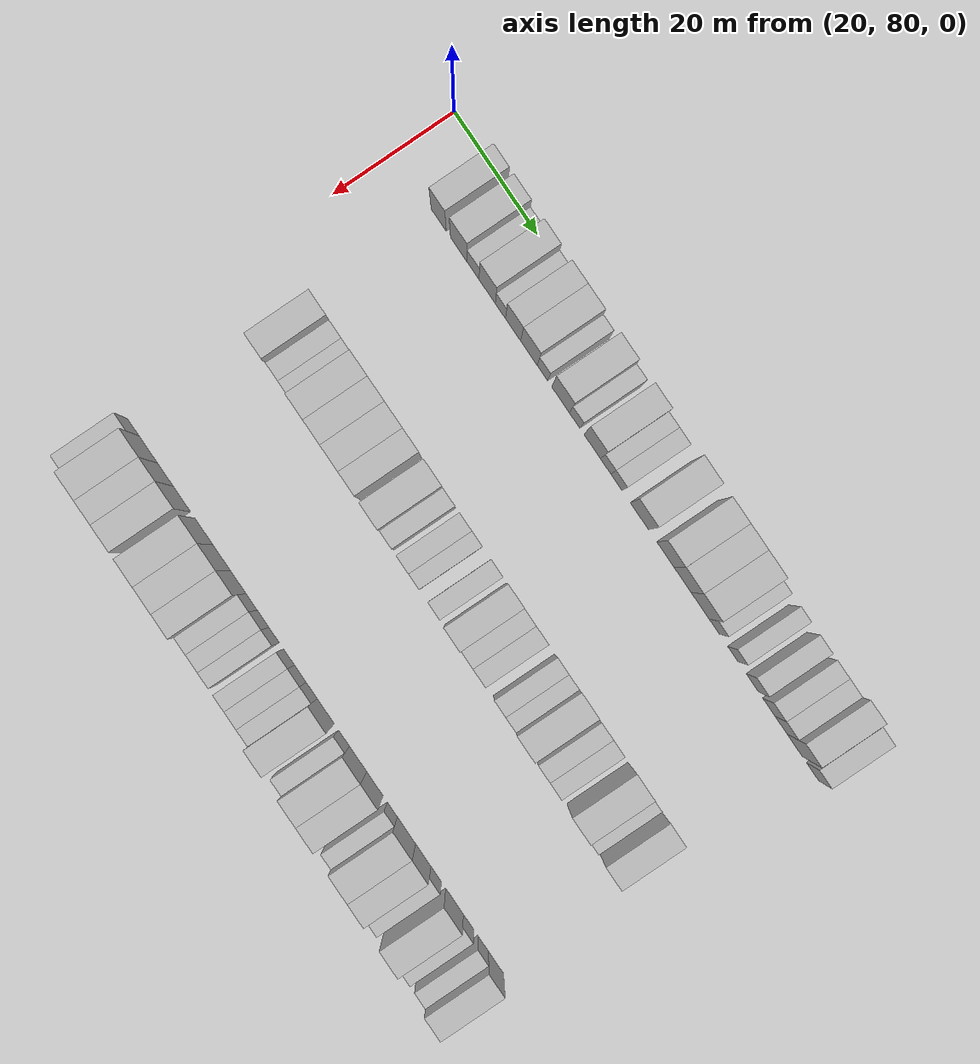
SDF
<sdf version="1.6">
 <world name="default">
  <model name="building_99">
   <static>1</static>
   <pose>25.0000 90.9124 0 0.000000 0.000000 0.000000</pose>
   <link name="link">
    <pose>0 0 4.50 0 0 0</pose>
    <collision name="collision"><geometry><box><size>10.0000 3.6326 9.0000</size></box></geometry></collision>
    <visual name="visual">
     <cast_shadows>0</cast_shadows>
     <geometry><box><size>10.0000 3.6326 9.0000</size></box></geometry>
     <material>
      <script>
       <uri>model://HANNAS_wall/materials/scripts</uri>
       <uri>model://HANNAS_wall/materials/textures</uri>
       <name>vrc/HANNAS_wall</name>
      </script>
     </material>
    </visual>
   </link>
  </model>
  <model name="building_100">
   <static>1</static>
   <pose>25.0000 95.7496 0 0.000000 0.000000 0.000000</pose>
   <link name="link">
    <pose>0 0 4.50 0 0 0</pose>
    <collision name="collision"><geometry><box><size>10.0000 4.0418 9.0000</size></box></geometry></collision>
    <visual name="visual">
     <cast_shadows>0</cast_shadows>
     <geometry><box><size>10.0000 4.0418 9.0000</size></box></geometry>
     <material>
      <script>
       <uri>model://HANNAS_wall/materials/scripts</uri>
       <uri>model://HANNAS_wall/materials/textures</uri>
       <name>vrc/HANNAS_wall</name>
      </script>
     </material>
    </visual>
   </link>
  </model>
  <model name="building_101">
   <static>1</static>
   <pose>25.0000 99.2112 0 0.000000 0.000000 0.000000</pose>
   <link name="link">
    <pose>0 0 3.00 0 0 0</pose>
    <collision name="collision"><geometry><box><size>10.0000 2.8814 6.0000</size></box></geometry></collision>
    <visual name="visual">
     <cast_shadows>0</cast_shadows>
     <geometry><box><size>10.0000 2.8814 6.0000</size></box></geometry>
     <material>
      <script>
       <uri>model://HANNAS_wall/materials/scripts</uri>
       <uri>model://HANNAS_wall/materials/textures</uri>
       <name>vrc/HANNAS_wall</name>
      </script>
     </material>
    </visual>
   </link>
  </model>
  <model name="building_102">
   <static>1</static>
   <pose>25.0000 102.6110 0 0.000000 0.000000 0.000000</pose>
   <link name="link">
    <pose>0 0 4.50 0 0 0</pose>
    <collision name="collision"><geometry><box><size>10.0000 3.9183 9.0000</size></box></geometry></collision>
    <visual name="visual">
     <cast_shadows>0</cast_shadows>
     <geometry><box><size>10.0000 3.9183 9.0000</size></box></geometry>
     <material>
      <script>
       <uri>model://HANNAS_wall/materials/scripts</uri>
       <uri>model://HANNAS_wall/materials/textures</uri>
       <name>vrc/HANNAS_wall</name>
      </script>
     </material>
    </visual>
   </link>
  </model>
  <model name="building_103">
   <static>1</static>
   <pose>25.0000 105.7883 0 0.000000 0.000000 0.000000</pose>
   <link name="link">
    <pose>0 0 3.00 0 0 0</pose>
    <collision name="collision"><geometry><box><size>10.0000 2.4362 6.0000</size></box></geometry></collision>
    <visual name="visual">
     <cast_shadows>0</cast_shadows>
     <geometry><box><size>10.0000 2.4362 6.0000</size></box></geometry>
     <material>
      <script>
       <uri>model://HANNAS_wall/materials/scripts</uri>
       <uri>model://HANNAS_wall/materials/textures</uri>
       <name>vrc/HANNAS_wall</name>
      </script>
     </material>
    </visual>
   </link>
  </model>
  <model name="building_104">
   <static>1</static>
   <pose>25.0000 108.8414 0 0.000000 0.000000 0.000000</pose>
   <link name="link">
    <pose>0 0 4.50 0 0 0</pose>
    <collision name="collision"><geometry><box><size>10.0000 3.6701 9.0000</size></box></geometry></collision>
    <visual name="visual">
     <cast_shadows>0</cast_shadows>
     <geometry><box><size>10.0000 3.6701 9.0000</size></box></geometry>
     <material>
      <script>
       <uri>model://HANNAS_wall/materials/scripts</uri>
       <uri>model://HANNAS_wall/materials/textures</uri>
       <name>vrc/HANNAS_wall</name>
      </script>
     </material>
    </visual>
   </link>
  </model>
  <model name="building_105">
   <static>1</static>
   <pose>25.0000 112.6756 0 0.000000 0.000000 0.000000</pose>
   <link name="link">
    <pose>0 0 4.50 0 0 0</pose>
    <collision name="collision"><geometry><box><size>10.0000 3.9984 9.0000</size></box></geometry></collision>
    <visual name="visual">
     <cast_shadows>0</cast_shadows>
     <geometry><box><size>10.0000 3.9984 9.0000</size></box></geometry>
     <material>
      <script>
       <uri>model://HANNAS_wall/materials/scripts</uri>
       <uri>model://HANNAS_wall/materials/textures</uri>
       <name>vrc/HANNAS_wall</name>
      </script>
     </material>
    </visual>
   </link>
  </model>
  <model name="building_106">
   <static>1</static>
   <pose>25.0000 115.9358 0 0.000000 0.000000 0.000000</pose>
   <link name="link">
    <pose>0 0 3.00 0 0 0</pose>
    <collision name="collision"><geometry><box><size>10.0000 2.5219 6.0000</size></box></geometry></collision>
    <visual name="visual">
     <cast_shadows>0</cast_shadows>
     <geometry><box><size>10.0000 2.5219 6.0000</size></box></geometry>
     <material>
      <script>
       <uri>model://HANNAS_wall/materials/scripts</uri>
       <uri>model://HANNAS_wall/materials/textures</uri>
       <name>vrc/HANNAS_wall</name>
      </script>
     </material>
    </visual>
   </link>
  </model>
  <model name="building_107">
   <static>1</static>
   <pose>25.0000 120.3085 0 0.000000 0.000000 0.000000</pose>
   <link name="link">
    <pose>0 0 4.50 0 0 0</pose>
    <collision name="collision"><geometry><box><size>10.0000 4.2235 9.0000</size></box></geometry></collision>
    <visual name="visual">
     <cast_shadows>0</cast_shadows>
     <geometry><box><size>10.0000 4.2235 9.0000</size></box></geometry>
     <material>
      <script>
       <uri>model://HANNAS_wall/materials/scripts</uri>
       <uri>model://HANNAS_wall/materials/textures</uri>
       <name>vrc/HANNAS_wall</name>
      </script>
     </material>
    </visual>
   </link>
  </model>
  <model name="building_108">
   <static>1</static>
   <pose>25.0000 123.6964 0 0.000000 0.000000 0.000000</pose>
   <link name="link">
    <pose>0 0 3.00 0 0 0</pose>
    <collision name="collision"><geometry><box><size>10.0000 2.5523 6.0000</size></box></geometry></collision>
    <visual name="visual">
     <cast_shadows>0</cast_shadows>
     <geometry><box><size>10.0000 2.5523 6.0000</size></box></geometry>
     <material>
      <script>
       <uri>model://HANNAS_wall/materials/scripts</uri>
       <uri>model://HANNAS_wall/materials/textures</uri>
       <name>vrc/HANNAS_wall</name>
      </script>
     </material>
    </visual>
   </link>
  </model>
  <model name="building_109">
   <static>1</static>
   <pose>25.0000 127.9633 0 0.000000 0.000000 0.000000</pose>
   <link name="link">
    <pose>0 0 4.50 0 0 0</pose>
    <collision name="collision"><geometry><box><size>10.0000 3.9815 9.0000</size></box></geometry></collision>
    <visual name="visual">
     <cast_shadows>0</cast_shadows>
     <geometry><box><size>10.0000 3.9815 9.0000</size></box></geometry>
     <material>
      <script>
       <uri>model://HANNAS_wall/materials/scripts</uri>
       <uri>model://HANNAS_wall/materials/textures</uri>
       <name>vrc/HANNAS_wall</name>
      </script>
     </material>
    </visual>
   </link>
  </model>
  <model name="building_110">
   <static>1</static>
   <pose>25.0000 131.2014 0 0.000000 0.000000 0.000000</pose>
   <link name="link">
    <pose>0 0 3.00 0 0 0</pose>
    <collision name="collision"><geometry><box><size>10.0000 2.4946 6.0000</size></box></geometry></collision>
    <visual name="visual">
     <cast_shadows>0</cast_shadows>
     <geometry><box><size>10.0000 2.4946 6.0000</size></box></geometry>
     <material>
      <script>
       <uri>model://HANNAS_wall/materials/scripts</uri>
       <uri>model://HANNAS_wall/materials/textures</uri>
       <name>vrc/HANNAS_wall</name>
      </script>
     </material>
    </visual>
   </link>
  </model>
  <model name="building_111">
   <static>1</static>
   <pose>25.0000 133.7897 0 0.000000 0.000000 0.000000</pose>
   <link name="link">
    <pose>0 0 3.00 0 0 0</pose>
    <collision name="collision"><geometry><box><size>10.0000 2.6820 6.0000</size></box></geometry></collision>
    <visual name="visual">
     <cast_shadows>0</cast_shadows>
     <geometry><box><size>10.0000 2.6820 6.0000</size></box></geometry>
     <material>
      <script>
       <uri>model://HANNAS_wall/materials/scripts</uri>
       <uri>model://HANNAS_wall/materials/textures</uri>
       <name>vrc/HANNAS_wall</name>
      </script>
     </material>
    </visual>
   </link>
  </model>
  <model name="building_112">
   <static>1</static>
   <pose>25.0000 139.3381 0 0.000000 0.000000 0.000000</pose>
   <link name="link">
    <pose>0 0 4.50 0 0 0</pose>
    <collision name="collision"><geometry><box><size>10.0000 4.4149 9.0000</size></box></geometry></collision>
    <visual name="visual">
     <cast_shadows>0</cast_shadows>
     <geometry><box><size>10.0000 4.4149 9.0000</size></box></geometry>
     <material>
      <script>
       <uri>model://HANNAS_wall/materials/scripts</uri>
       <uri>model://HANNAS_wall/materials/textures</uri>
       <name>vrc/HANNAS_wall</name>
      </script>
     </material>
    </visual>
   </link>
  </model>
  <model name="building_113">
   <static>1</static>
   <pose>25.0000 145.6314 0 0.000000 0.000000 0.000000</pose>
   <link name="link">
    <pose>0 0 4.50 0 0 0</pose>
    <collision name="collision"><geometry><box><size>10.0000 4.1716 9.0000</size></box></geometry></collision>
    <visual name="visual">
     <cast_shadows>0</cast_shadows>
     <geometry><box><size>10.0000 4.1716 9.0000</size></box></geometry>
     <material>
      <script>
       <uri>model://HANNAS_wall/materials/scripts</uri>
       <uri>model://HANNAS_wall/materials/textures</uri>
       <name>vrc/HANNAS_wall</name>
      </script>
     </material>
    </visual>
   </link>
  </model>
  <model name="building_114">
   <static>1</static>
   <pose>25.0000 149.7600 0 0.000000 0.000000 0.000000</pose>
   <link name="link">
    <pose>0 0 4.50 0 0 0</pose>
    <collision name="collision"><geometry><box><size>10.0000 4.0855 9.0000</size></box></geometry></collision>
    <visual name="visual">
     <cast_shadows>0</cast_shadows>
     <geometry><box><size>10.0000 4.0855 9.0000</size></box></geometry>
     <material>
      <script>
       <uri>model://HANNAS_wall/materials/scripts</uri>
       <uri>model://HANNAS_wall/materials/textures</uri>
       <name>vrc/HANNAS_wall</name>
      </script>
     </material>
    </visual>
   </link>
  </model>
  <model name="building_115">
   <static>1</static>
   <pose>25.0000 153.9776 0 0.000000 0.000000 0.000000</pose>
   <link name="link">
    <pose>0 0 4.50 0 0 0</pose>
    <collision name="collision"><geometry><box><size>10.0000 4.3497 9.0000</size></box></geometry></collision>
    <visual name="visual">
     <cast_shadows>0</cast_shadows>
     <geometry><box><size>10.0000 4.3497 9.0000</size></box></geometry>
     <material>
      <script>
       <uri>model://HANNAS_wall/materials/scripts</uri>
       <uri>model://HANNAS_wall/materials/textures</uri>
       <name>vrc/HANNAS_wall</name>
      </script>
     </material>
    </visual>
   </link>
  </model>
  <model name="building_116">
   <static>1</static>
   <pose>25.0000 157.3982 0 0.000000 0.000000 0.000000</pose>
   <link name="link">
    <pose>0 0 3.00 0 0 0</pose>
    <collision name="collision"><geometry><box><size>10.0000 2.4916 6.0000</size></box></geometry></collision>
    <visual name="visual">
     <cast_shadows>0</cast_shadows>
     <geometry><box><size>10.0000 2.4916 6.0000</size></box></geometry>
     <material>
      <script>
       <uri>model://HANNAS_wall/materials/scripts</uri>
       <uri>model://HANNAS_wall/materials/textures</uri>
       <name>vrc/HANNAS_wall</name>
      </script>
     </material>
    </visual>
   </link>
  </model>
  <model name="building_117">
   <static>1</static>
   <pose>25.0000 161.8828 0 0.000000 0.000000 0.000000</pose>
   <link name="link">
    <pose>0 0 3.00 0 0 0</pose>
    <collision name="collision"><geometry><box><size>10.0000 2.4776 6.0000</size></box></geometry></collision>
    <visual name="visual">
     <cast_shadows>0</cast_shadows>
     <geometry><box><size>10.0000 2.4776 6.0000</size></box></geometry>
     <material>
      <script>
       <uri>model://HANNAS_wall/materials/scripts</uri>
       <uri>model://HANNAS_wall/materials/textures</uri>
       <name>vrc/HANNAS_wall</name>
      </script>
     </material>
    </visual>
   </link>
  </model>
  <model name="building_118">
   <static>1</static>
   <pose>25.0000 166.6132 0 0.000000 0.000000 0.000000</pose>
   <link name="link">
    <pose>0 0 3.00 0 0 0</pose>
    <collision name="collision"><geometry><box><size>10.0000 2.9832 6.0000</size></box></geometry></collision>
    <visual name="visual">
     <cast_shadows>0</cast_shadows>
     <geometry><box><size>10.0000 2.9832 6.0000</size></box></geometry>
     <material>
      <script>
       <uri>model://HANNAS_wall/materials/scripts</uri>
       <uri>model://HANNAS_wall/materials/textures</uri>
       <name>vrc/HANNAS_wall</name>
      </script>
     </material>
    </visual>
   </link>
  </model>
  <model name="building_119">
   <static>1</static>
   <pose>25.0000 170.5753 0 0.000000 0.000000 0.000000</pose>
   <link name="link">
    <pose>0 0 3.00 0 0 0</pose>
    <collision name="collision"><geometry><box><size>10.0000 2.9409 6.0000</size></box></geometry></collision>
    <visual name="visual">
     <cast_shadows>0</cast_shadows>
     <geometry><box><size>10.0000 2.9409 6.0000</size></box></geometry>
     <material>
      <script>
       <uri>model://HANNAS_wall/materials/scripts</uri>
       <uri>model://HANNAS_wall/materials/textures</uri>
       <name>vrc/HANNAS_wall</name>
      </script>
     </material>
    </visual>
   </link>
  </model>
  <model name="building_120">
   <static>1</static>
   <pose>25.0000 173.5077 0 0.000000 0.000000 0.000000</pose>
   <link name="link">
    <pose>0 0 3.00 0 0 0</pose>
    <collision name="collision"><geometry><box><size>10.0000 2.9238 6.0000</size></box></geometry></collision>
    <visual name="visual">
     <cast_shadows>0</cast_shadows>
     <geometry><box><size>10.0000 2.9238 6.0000</size></box></geometry>
     <material>
      <script>
       <uri>model://HANNAS_wall/materials/scripts</uri>
       <uri>model://HANNAS_wall/materials/textures</uri>
       <name>vrc/HANNAS_wall</name>
      </script>
     </material>
    </visual>
   </link>
  </model>
  <model name="building_121">
   <static>1</static>
   <pose>25.0000 176.8179 0 0.000000 0.000000 0.000000</pose>
   <link name="link">
    <pose>0 0 4.50 0 0 0</pose>
    <collision name="collision"><geometry><box><size>10.0000 3.6967 9.0000</size></box></geometry></collision>
    <visual name="visual">
     <cast_shadows>0</cast_shadows>
     <geometry><box><size>10.0000 3.6967 9.0000</size></box></geometry>
     <material>
      <script>
       <uri>model://HANNAS_wall/materials/scripts</uri>
       <uri>model://HANNAS_wall/materials/textures</uri>
       <name>vrc/HANNAS_wall</name>
      </script>
     </material>
    </visual>
   </link>
  </model>
  <model name="building_122">
   <static>1</static>
   <pose>25.0000 181.1464 0 0.000000 0.000000 0.000000</pose>
   <link name="link">
    <pose>0 0 3.00 0 0 0</pose>
    <collision name="collision"><geometry><box><size>10.0000 2.9602 6.0000</size></box></geometry></collision>
    <visual name="visual">
     <cast_shadows>0</cast_shadows>
     <geometry><box><size>10.0000 2.9602 6.0000</size></box></geometry>
     <material>
      <script>
       <uri>model://HANNAS_wall/materials/scripts</uri>
       <uri>model://HANNAS_wall/materials/textures</uri>
       <name>vrc/HANNAS_wall</name>
      </script>
     </material>
    </visual>
   </link>
  </model>
  <model name="building_249">
   <static>1</static>
   <pose>55.0000 93.2096 0 0.000000 0.000000 0.000000</pose>
   <link name="link">
    <pose>0 0 4.50 0 0 0</pose>
    <collision name="collision"><geometry><box><size>10.0000 3.9782 9.0000</size></box></geometry></collision>
    <visual name="visual">
     <cast_shadows>0</cast_shadows>
     <geometry><box><size>10.0000 3.9782 9.0000</size></box></geometry>
     <material>
      <script>
       <uri>model://HANNAS_wall/materials/scripts</uri>
       <uri>model://HANNAS_wall/materials/textures</uri>
       <name>vrc/HANNAS_wall</name>
      </script>
     </material>
    </visual>
   </link>
  </model>
  <model name="building_250">
   <static>1</static>
   <pose>55.0000 96.6292 0 0.000000 0.000000 0.000000</pose>
   <link name="link">
    <pose>0 0 3.00 0 0 0</pose>
    <collision name="collision"><geometry><box><size>10.0000 2.8611 6.0000</size></box></geometry></collision>
    <visual name="visual">
     <cast_shadows>0</cast_shadows>
     <geometry><box><size>10.0000 2.8611 6.0000</size></box></geometry>
     <material>
      <script>
       <uri>model://HANNAS_wall/materials/scripts</uri>
       <uri>model://HANNAS_wall/materials/textures</uri>
       <name>vrc/HANNAS_wall</name>
      </script>
     </material>
    </visual>
   </link>
  </model>
  <model name="building_251">
   <static>1</static>
   <pose>55.0000 99.2992 0 0.000000 0.000000 0.000000</pose>
   <link name="link">
    <pose>0 0 3.00 0 0 0</pose>
    <collision name="collision"><geometry><box><size>10.0000 2.4788 6.0000</size></box></geometry></collision>
    <visual name="visual">
     <cast_shadows>0</cast_shadows>
     <geometry><box><size>10.0000 2.4788 6.0000</size></box></geometry>
     <material>
      <script>
       <uri>model://HANNAS_wall/materials/scripts</uri>
       <uri>model://HANNAS_wall/materials/textures</uri>
       <name>vrc/HANNAS_wall</name>
      </script>
     </material>
    </visual>
   </link>
  </model>
  <model name="building_252">
   <static>1</static>
   <pose>55.0000 102.5738 0 0.000000 0.000000 0.000000</pose>
   <link name="link">
    <pose>0 0 4.50 0 0 0</pose>
    <collision name="collision"><geometry><box><size>10.0000 4.0705 9.0000</size></box></geometry></collision>
    <visual name="visual">
     <cast_shadows>0</cast_shadows>
     <geometry><box><size>10.0000 4.0705 9.0000</size></box></geometry>
     <material>
      <script>
       <uri>model://HANNAS_wall/materials/scripts</uri>
       <uri>model://HANNAS_wall/materials/textures</uri>
       <name>vrc/HANNAS_wall</name>
      </script>
     </material>
    </visual>
   </link>
  </model>
  <model name="building_253">
   <static>1</static>
   <pose>55.0000 106.5539 0 0.000000 0.000000 0.000000</pose>
   <link name="link">
    <pose>0 0 4.50 0 0 0</pose>
    <collision name="collision"><geometry><box><size>10.0000 3.8898 9.0000</size></box></geometry></collision>
    <visual name="visual">
     <cast_shadows>0</cast_shadows>
     <geometry><box><size>10.0000 3.8898 9.0000</size></box></geometry>
     <material>
      <script>
       <uri>model://HANNAS_wall/materials/scripts</uri>
       <uri>model://HANNAS_wall/materials/textures</uri>
       <name>vrc/HANNAS_wall</name>
      </script>
     </material>
    </visual>
   </link>
  </model>
  <model name="building_254">
   <static>1</static>
   <pose>55.0000 110.5671 0 0.000000 0.000000 0.000000</pose>
   <link name="link">
    <pose>0 0 4.50 0 0 0</pose>
    <collision name="collision"><geometry><box><size>10.0000 4.1366 9.0000</size></box></geometry></collision>
    <visual name="visual">
     <cast_shadows>0</cast_shadows>
     <geometry><box><size>10.0000 4.1366 9.0000</size></box></geometry>
     <material>
      <script>
       <uri>model://HANNAS_wall/materials/scripts</uri>
       <uri>model://HANNAS_wall/materials/textures</uri>
       <name>vrc/HANNAS_wall</name>
      </script>
     </material>
    </visual>
   </link>
  </model>
  <model name="building_255">
   <static>1</static>
   <pose>55.0000 114.5091 0 0.000000 0.000000 0.000000</pose>
   <link name="link">
    <pose>0 0 4.50 0 0 0</pose>
    <collision name="collision"><geometry><box><size>10.0000 3.7475 9.0000</size></box></geometry></collision>
    <visual name="visual">
     <cast_shadows>0</cast_shadows>
     <geometry><box><size>10.0000 3.7475 9.0000</size></box></geometry>
     <material>
      <script>
       <uri>model://HANNAS_wall/materials/scripts</uri>
       <uri>model://HANNAS_wall/materials/textures</uri>
       <name>vrc/HANNAS_wall</name>
      </script>
     </material>
    </visual>
   </link>
  </model>
  <model name="building_256">
   <static>1</static>
   <pose>55.0000 119.5069 0 0.000000 0.000000 0.000000</pose>
   <link name="link">
    <pose>0 0 4.50 0 0 0</pose>
    <collision name="collision"><geometry><box><size>10.0000 4.2481 9.0000</size></box></geometry></collision>
    <visual name="visual">
     <cast_shadows>0</cast_shadows>
     <geometry><box><size>10.0000 4.2481 9.0000</size></box></geometry>
     <material>
      <script>
       <uri>model://HANNAS_wall/materials/scripts</uri>
       <uri>model://HANNAS_wall/materials/textures</uri>
       <name>vrc/HANNAS_wall</name>
      </script>
     </material>
    </visual>
   </link>
  </model>
  <model name="building_257">
   <static>1</static>
   <pose>55.0000 123.0800 0 0.000000 0.000000 0.000000</pose>
   <link name="link">
    <pose>0 0 3.00 0 0 0</pose>
    <collision name="collision"><geometry><box><size>10.0000 2.8982 6.0000</size></box></geometry></collision>
    <visual name="visual">
     <cast_shadows>0</cast_shadows>
     <geometry><box><size>10.0000 2.8982 6.0000</size></box></geometry>
     <material>
      <script>
       <uri>model://HANNAS_wall/materials/scripts</uri>
       <uri>model://HANNAS_wall/materials/textures</uri>
       <name>vrc/HANNAS_wall</name>
      </script>
     </material>
    </visual>
   </link>
  </model>
  <model name="building_258">
   <static>1</static>
   <pose>55.0000 126.9875 0 0.000000 0.000000 0.000000</pose>
   <link name="link">
    <pose>0 0 3.00 0 0 0</pose>
    <collision name="collision"><geometry><box><size>10.0000 2.9167 6.0000</size></box></geometry></collision>
    <visual name="visual">
     <cast_shadows>0</cast_shadows>
     <geometry><box><size>10.0000 2.9167 6.0000</size></box></geometry>
     <material>
      <script>
       <uri>model://HANNAS_wall/materials/scripts</uri>
       <uri>model://HANNAS_wall/materials/textures</uri>
       <name>vrc/HANNAS_wall</name>
      </script>
     </material>
    </visual>
   </link>
  </model>
  <model name="building_259">
   <static>1</static>
   <pose>55.0000 129.6773 0 0.000000 0.000000 0.000000</pose>
   <link name="link">
    <pose>0 0 3.00 0 0 0</pose>
    <collision name="collision"><geometry><box><size>10.0000 2.4628 6.0000</size></box></geometry></collision>
    <visual name="visual">
     <cast_shadows>0</cast_shadows>
     <geometry><box><size>10.0000 2.4628 6.0000</size></box></geometry>
     <material>
      <script>
       <uri>model://HANNAS_wall/materials/scripts</uri>
       <uri>model://HANNAS_wall/materials/textures</uri>
       <name>vrc/HANNAS_wall</name>
      </script>
     </material>
    </visual>
   </link>
  </model>
  <model name="building_260">
   <static>1</static>
   <pose>55.0000 134.3126 0 0.000000 0.000000 0.000000</pose>
   <link name="link">
    <pose>0 0 3.00 0 0 0</pose>
    <collision name="collision"><geometry><box><size>10.0000 2.8078 6.0000</size></box></geometry></collision>
    <visual name="visual">
     <cast_shadows>0</cast_shadows>
     <geometry><box><size>10.0000 2.8078 6.0000</size></box></geometry>
     <material>
      <script>
       <uri>model://HANNAS_wall/materials/scripts</uri>
       <uri>model://HANNAS_wall/materials/textures</uri>
       <name>vrc/HANNAS_wall</name>
      </script>
     </material>
    </visual>
   </link>
  </model>
  <model name="building_261">
   <static>1</static>
   <pose>55.0000 138.6071 0 0.000000 0.000000 0.000000</pose>
   <link name="link">
    <pose>0 0 4.50 0 0 0</pose>
    <collision name="collision"><geometry><box><size>10.0000 3.7814 9.0000</size></box></geometry></collision>
    <visual name="visual">
     <cast_shadows>0</cast_shadows>
     <geometry><box><size>10.0000 3.7814 9.0000</size></box></geometry>
     <material>
      <script>
       <uri>model://HANNAS_wall/materials/scripts</uri>
       <uri>model://HANNAS_wall/materials/textures</uri>
       <name>vrc/HANNAS_wall</name>
      </script>
     </material>
    </visual>
   </link>
  </model>
  <model name="building_262">
   <static>1</static>
   <pose>55.0000 141.9682 0 0.000000 0.000000 0.000000</pose>
   <link name="link">
    <pose>0 0 3.00 0 0 0</pose>
    <collision name="collision"><geometry><box><size>10.0000 2.9407 6.0000</size></box></geometry></collision>
    <visual name="visual">
     <cast_shadows>0</cast_shadows>
     <geometry><box><size>10.0000 2.9407 6.0000</size></box></geometry>
     <material>
      <script>
       <uri>model://HANNAS_wall/materials/scripts</uri>
       <uri>model://HANNAS_wall/materials/textures</uri>
       <name>vrc/HANNAS_wall</name>
      </script>
     </material>
    </visual>
   </link>
  </model>
  <model name="building_263">
   <static>1</static>
   <pose>55.0000 144.9053 0 0.000000 0.000000 0.000000</pose>
   <link name="link">
    <pose>0 0 3.00 0 0 0</pose>
    <collision name="collision"><geometry><box><size>10.0000 2.9337 6.0000</size></box></geometry></collision>
    <visual name="visual">
     <cast_shadows>0</cast_shadows>
     <geometry><box><size>10.0000 2.9337 6.0000</size></box></geometry>
     <material>
      <script>
       <uri>model://HANNAS_wall/materials/scripts</uri>
       <uri>model://HANNAS_wall/materials/textures</uri>
       <name>vrc/HANNAS_wall</name>
      </script>
     </material>
    </visual>
   </link>
  </model>
  <model name="building_264">
   <static>1</static>
   <pose>55.0000 149.7142 0 0.000000 0.000000 0.000000</pose>
   <link name="link">
    <pose>0 0 3.00 0 0 0</pose>
    <collision name="collision"><geometry><box><size>10.0000 2.6842 6.0000</size></box></geometry></collision>
    <visual name="visual">
     <cast_shadows>0</cast_shadows>
     <geometry><box><size>10.0000 2.6842 6.0000</size></box></geometry>
     <material>
      <script>
       <uri>model://HANNAS_wall/materials/scripts</uri>
       <uri>model://HANNAS_wall/materials/textures</uri>
       <name>vrc/HANNAS_wall</name>
      </script>
     </material>
    </visual>
   </link>
  </model>
  <model name="building_265">
   <static>1</static>
   <pose>55.0000 152.2629 0 0.000000 0.000000 0.000000</pose>
   <link name="link">
    <pose>0 0 3.00 0 0 0</pose>
    <collision name="collision"><geometry><box><size>10.0000 2.4132 6.0000</size></box></geometry></collision>
    <visual name="visual">
     <cast_shadows>0</cast_shadows>
     <geometry><box><size>10.0000 2.4132 6.0000</size></box></geometry>
     <material>
      <script>
       <uri>model://HANNAS_wall/materials/scripts</uri>
       <uri>model://HANNAS_wall/materials/textures</uri>
       <name>vrc/HANNAS_wall</name>
      </script>
     </material>
    </visual>
   </link>
  </model>
  <model name="building_266">
   <static>1</static>
   <pose>55.0000 155.5498 0 0.000000 0.000000 0.000000</pose>
   <link name="link">
    <pose>0 0 4.50 0 0 0</pose>
    <collision name="collision"><geometry><box><size>10.0000 4.1605 9.0000</size></box></geometry></collision>
    <visual name="visual">
     <cast_shadows>0</cast_shadows>
     <geometry><box><size>10.0000 4.1605 9.0000</size></box></geometry>
     <material>
      <script>
       <uri>model://HANNAS_wall/materials/scripts</uri>
       <uri>model://HANNAS_wall/materials/textures</uri>
       <name>vrc/HANNAS_wall</name>
      </script>
     </material>
    </visual>
   </link>
  </model>
  <model name="building_267">
   <static>1</static>
   <pose>55.0000 160.0153 0 0.000000 0.000000 0.000000</pose>
   <link name="link">
    <pose>0 0 3.00 0 0 0</pose>
    <collision name="collision"><geometry><box><size>10.0000 2.7706 6.0000</size></box></geometry></collision>
    <visual name="visual">
     <cast_shadows>0</cast_shadows>
     <geometry><box><size>10.0000 2.7706 6.0000</size></box></geometry>
     <material>
      <script>
       <uri>model://HANNAS_wall/materials/scripts</uri>
       <uri>model://HANNAS_wall/materials/textures</uri>
       <name>vrc/HANNAS_wall</name>
      </script>
     </material>
    </visual>
   </link>
  </model>
  <model name="building_268">
   <static>1</static>
   <pose>55.0000 162.7413 0 0.000000 0.000000 0.000000</pose>
   <link name="link">
    <pose>0 0 3.00 0 0 0</pose>
    <collision name="collision"><geometry><box><size>10.0000 2.6814 6.0000</size></box></geometry></collision>
    <visual name="visual">
     <cast_shadows>0</cast_shadows>
     <geometry><box><size>10.0000 2.6814 6.0000</size></box></geometry>
     <material>
      <script>
       <uri>model://HANNAS_wall/materials/scripts</uri>
       <uri>model://HANNAS_wall/materials/textures</uri>
       <name>vrc/HANNAS_wall</name>
      </script>
     </material>
    </visual>
   </link>
  </model>
  <model name="building_269">
   <static>1</static>
   <pose>55.0000 168.1787 0 0.000000 0.000000 0.000000</pose>
   <link name="link">
    <pose>0 0 4.50 0 0 0</pose>
    <collision name="collision"><geometry><box><size>10.0000 4.1935 9.0000</size></box></geometry></collision>
    <visual name="visual">
     <cast_shadows>0</cast_shadows>
     <geometry><box><size>10.0000 4.1935 9.0000</size></box></geometry>
     <material>
      <script>
       <uri>model://HANNAS_wall/materials/scripts</uri>
       <uri>model://HANNAS_wall/materials/textures</uri>
       <name>vrc/HANNAS_wall</name>
      </script>
     </material>
    </visual>
   </link>
  </model>
  <model name="building_270">
   <static>1</static>
   <pose>55.0000 171.4827 0 0.000000 0.000000 0.000000</pose>
   <link name="link">
    <pose>0 0 3.00 0 0 0</pose>
    <collision name="collision"><geometry><box><size>10.0000 2.4144 6.0000</size></box></geometry></collision>
    <visual name="visual">
     <cast_shadows>0</cast_shadows>
     <geometry><box><size>10.0000 2.4144 6.0000</size></box></geometry>
     <material>
      <script>
       <uri>model://HANNAS_wall/materials/scripts</uri>
       <uri>model://HANNAS_wall/materials/textures</uri>
       <name>vrc/HANNAS_wall</name>
      </script>
     </material>
    </visual>
   </link>
  </model>
  <model name="building_271">
   <static>1</static>
   <pose>55.0000 175.5330 0 0.000000 0.000000 0.000000</pose>
   <link name="link">
    <pose>0 0 4.50 0 0 0</pose>
    <collision name="collision"><geometry><box><size>10.0000 3.6862 9.0000</size></box></geometry></collision>
    <visual name="visual">
     <cast_shadows>0</cast_shadows>
     <geometry><box><size>10.0000 3.6862 9.0000</size></box></geometry>
     <material>
      <script>
       <uri>model://HANNAS_wall/materials/scripts</uri>
       <uri>model://HANNAS_wall/materials/textures</uri>
       <name>vrc/HANNAS_wall</name>
      </script>
     </material>
    </visual>
   </link>
  </model>
  <model name="building_386">
   <static>1</static>
   <pose>85.0000 90.8840 0 0.000000 0.000000 0.000000</pose>
   <link name="link">
    <pose>0 0 3.00 0 0 0</pose>
    <collision name="collision"><geometry><box><size>10.0000 2.8531 6.0000</size></box></geometry></collision>
    <visual name="visual">
     <cast_shadows>0</cast_shadows>
     <geometry><box><size>10.0000 2.8531 6.0000</size></box></geometry>
     <material>
      <script>
       <uri>model://HANNAS_wall/materials/scripts</uri>
       <uri>model://HANNAS_wall/materials/textures</uri>
       <name>vrc/HANNAS_wall</name>
      </script>
     </material>
    </visual>
   </link>
  </model>
  <model name="building_387">
   <static>1</static>
   <pose>85.0000 94.5472 0 0.000000 0.000000 0.000000</pose>
   <link name="link">
    <pose>0 0 4.50 0 0 0</pose>
    <collision name="collision"><geometry><box><size>10.0000 4.4735 9.0000</size></box></geometry></collision>
    <visual name="visual">
     <cast_shadows>0</cast_shadows>
     <geometry><box><size>10.0000 4.4735 9.0000</size></box></geometry>
     <material>
      <script>
       <uri>model://HANNAS_wall/materials/scripts</uri>
       <uri>model://HANNAS_wall/materials/textures</uri>
       <name>vrc/HANNAS_wall</name>
      </script>
     </material>
    </visual>
   </link>
  </model>
  <model name="building_388">
   <static>1</static>
   <pose>85.0000 98.6598 0 0.000000 0.000000 0.000000</pose>
   <link name="link">
    <pose>0 0 4.50 0 0 0</pose>
    <collision name="collision"><geometry><box><size>10.0000 3.7517 9.0000</size></box></geometry></collision>
    <visual name="visual">
     <cast_shadows>0</cast_shadows>
     <geometry><box><size>10.0000 3.7517 9.0000</size></box></geometry>
     <material>
      <script>
       <uri>model://HANNAS_wall/materials/scripts</uri>
       <uri>model://HANNAS_wall/materials/textures</uri>
       <name>vrc/HANNAS_wall</name>
      </script>
     </material>
    </visual>
   </link>
  </model>
  <model name="building_389">
   <static>1</static>
   <pose>85.0000 102.6459 0 0.000000 0.000000 0.000000</pose>
   <link name="link">
    <pose>0 0 4.50 0 0 0</pose>
    <collision name="collision"><geometry><box><size>10.0000 4.2206 9.0000</size></box></geometry></collision>
    <visual name="visual">
     <cast_shadows>0</cast_shadows>
     <geometry><box><size>10.0000 4.2206 9.0000</size></box></geometry>
     <material>
      <script>
       <uri>model://HANNAS_wall/materials/scripts</uri>
       <uri>model://HANNAS_wall/materials/textures</uri>
       <name>vrc/HANNAS_wall</name>
      </script>
     </material>
    </visual>
   </link>
  </model>
  <model name="building_390">
   <static>1</static>
   <pose>85.0000 107.9439 0 0.000000 0.000000 0.000000</pose>
   <link name="link">
    <pose>0 0 4.50 0 0 0</pose>
    <collision name="collision"><geometry><box><size>10.0000 4.3754 9.0000</size></box></geometry></collision>
    <visual name="visual">
     <cast_shadows>0</cast_shadows>
     <geometry><box><size>10.0000 4.3754 9.0000</size></box></geometry>
     <material>
      <script>
       <uri>model://HANNAS_wall/materials/scripts</uri>
       <uri>model://HANNAS_wall/materials/textures</uri>
       <name>vrc/HANNAS_wall</name>
      </script>
     </material>
    </visual>
   </link>
  </model>
  <model name="building_391">
   <static>1</static>
   <pose>85.0000 112.2312 0 0.000000 0.000000 0.000000</pose>
   <link name="link">
    <pose>0 0 4.50 0 0 0</pose>
    <collision name="collision"><geometry><box><size>10.0000 4.1993 9.0000</size></box></geometry></collision>
    <visual name="visual">
     <cast_shadows>0</cast_shadows>
     <geometry><box><size>10.0000 4.1993 9.0000</size></box></geometry>
     <material>
      <script>
       <uri>model://HANNAS_wall/materials/scripts</uri>
       <uri>model://HANNAS_wall/materials/textures</uri>
       <name>vrc/HANNAS_wall</name>
      </script>
     </material>
    </visual>
   </link>
  </model>
  <model name="building_392">
   <static>1</static>
   <pose>85.0000 116.2372 0 0.000000 0.000000 0.000000</pose>
   <link name="link">
    <pose>0 0 4.50 0 0 0</pose>
    <collision name="collision"><geometry><box><size>10.0000 3.8128 9.0000</size></box></geometry></collision>
    <visual name="visual">
     <cast_shadows>0</cast_shadows>
     <geometry><box><size>10.0000 3.8128 9.0000</size></box></geometry>
     <material>
      <script>
       <uri>model://HANNAS_wall/materials/scripts</uri>
       <uri>model://HANNAS_wall/materials/textures</uri>
       <name>vrc/HANNAS_wall</name>
      </script>
     </material>
    </visual>
   </link>
  </model>
  <model name="building_393">
   <static>1</static>
   <pose>85.0000 119.4964 0 0.000000 0.000000 0.000000</pose>
   <link name="link">
    <pose>0 0 3.00 0 0 0</pose>
    <collision name="collision"><geometry><box><size>10.0000 2.7057 6.0000</size></box></geometry></collision>
    <visual name="visual">
     <cast_shadows>0</cast_shadows>
     <geometry><box><size>10.0000 2.7057 6.0000</size></box></geometry>
     <material>
      <script>
       <uri>model://HANNAS_wall/materials/scripts</uri>
       <uri>model://HANNAS_wall/materials/textures</uri>
       <name>vrc/HANNAS_wall</name>
      </script>
     </material>
    </visual>
   </link>
  </model>
  <model name="building_394">
   <static>1</static>
   <pose>85.0000 122.2589 0 0.000000 0.000000 0.000000</pose>
   <link name="link">
    <pose>0 0 3.00 0 0 0</pose>
    <collision name="collision"><geometry><box><size>10.0000 2.8193 6.0000</size></box></geometry></collision>
    <visual name="visual">
     <cast_shadows>0</cast_shadows>
     <geometry><box><size>10.0000 2.8193 6.0000</size></box></geometry>
     <material>
      <script>
       <uri>model://HANNAS_wall/materials/scripts</uri>
       <uri>model://HANNAS_wall/materials/textures</uri>
       <name>vrc/HANNAS_wall</name>
      </script>
     </material>
    </visual>
   </link>
  </model>
  <model name="building_395">
   <static>1</static>
   <pose>85.0000 124.9315 0 0.000000 0.000000 0.000000</pose>
   <link name="link">
    <pose>0 0 3.00 0 0 0</pose>
    <collision name="collision"><geometry><box><size>10.0000 2.5259 6.0000</size></box></geometry></collision>
    <visual name="visual">
     <cast_shadows>0</cast_shadows>
     <geometry><box><size>10.0000 2.5259 6.0000</size></box></geometry>
     <material>
      <script>
       <uri>model://HANNAS_wall/materials/scripts</uri>
       <uri>model://HANNAS_wall/materials/textures</uri>
       <name>vrc/HANNAS_wall</name>
      </script>
     </material>
    </visual>
   </link>
  </model>
  <model name="building_396">
   <static>1</static>
   <pose>85.0000 128.5147 0 0.000000 0.000000 0.000000</pose>
   <link name="link">
    <pose>0 0 3.00 0 0 0</pose>
    <collision name="collision"><geometry><box><size>10.0000 2.6405 6.0000</size></box></geometry></collision>
    <visual name="visual">
     <cast_shadows>0</cast_shadows>
     <geometry><box><size>10.0000 2.6405 6.0000</size></box></geometry>
     <material>
      <script>
       <uri>model://HANNAS_wall/materials/scripts</uri>
       <uri>model://HANNAS_wall/materials/textures</uri>
       <name>vrc/HANNAS_wall</name>
      </script>
     </material>
    </visual>
   </link>
  </model>
  <model name="building_397">
   <static>1</static>
   <pose>85.0000 131.2482 0 0.000000 0.000000 0.000000</pose>
   <link name="link">
    <pose>0 0 3.00 0 0 0</pose>
    <collision name="collision"><geometry><box><size>10.0000 2.8266 6.0000</size></box></geometry></collision>
    <visual name="visual">
     <cast_shadows>0</cast_shadows>
     <geometry><box><size>10.0000 2.8266 6.0000</size></box></geometry>
     <material>
      <script>
       <uri>model://HANNAS_wall/materials/scripts</uri>
       <uri>model://HANNAS_wall/materials/textures</uri>
       <name>vrc/HANNAS_wall</name>
      </script>
     </material>
    </visual>
   </link>
  </model>
  <model name="building_398">
   <static>1</static>
   <pose>85.0000 133.9945 0 0.000000 0.000000 0.000000</pose>
   <link name="link">
    <pose>0 0 3.00 0 0 0</pose>
    <collision name="collision"><geometry><box><size>10.0000 2.6660 6.0000</size></box></geometry></collision>
    <visual name="visual">
     <cast_shadows>0</cast_shadows>
     <geometry><box><size>10.0000 2.6660 6.0000</size></box></geometry>
     <material>
      <script>
       <uri>model://HANNAS_wall/materials/scripts</uri>
       <uri>model://HANNAS_wall/materials/textures</uri>
       <name>vrc/HANNAS_wall</name>
      </script>
     </material>
    </visual>
   </link>
  </model>
  <model name="building_399">
   <static>1</static>
   <pose>85.0000 137.4076 0 0.000000 0.000000 0.000000</pose>
   <link name="link">
    <pose>0 0 4.50 0 0 0</pose>
    <collision name="collision"><geometry><box><size>10.0000 4.1602 9.0000</size></box></geometry></collision>
    <visual name="visual">
     <cast_shadows>0</cast_shadows>
     <geometry><box><size>10.0000 4.1602 9.0000</size></box></geometry>
     <material>
      <script>
       <uri>model://HANNAS_wall/materials/scripts</uri>
       <uri>model://HANNAS_wall/materials/textures</uri>
       <name>vrc/HANNAS_wall</name>
      </script>
     </material>
    </visual>
   </link>
  </model>
  <model name="building_400">
   <static>1</static>
   <pose>85.0000 141.8039 0 0.000000 0.000000 0.000000</pose>
   <link name="link">
    <pose>0 0 3.00 0 0 0</pose>
    <collision name="collision"><geometry><box><size>10.0000 2.6324 6.0000</size></box></geometry></collision>
    <visual name="visual">
     <cast_shadows>0</cast_shadows>
     <geometry><box><size>10.0000 2.6324 6.0000</size></box></geometry>
     <material>
      <script>
       <uri>model://HANNAS_wall/materials/scripts</uri>
       <uri>model://HANNAS_wall/materials/textures</uri>
       <name>vrc/HANNAS_wall</name>
      </script>
     </material>
    </visual>
   </link>
  </model>
  <model name="building_401">
   <static>1</static>
   <pose>85.0000 145.2190 0 0.000000 0.000000 0.000000</pose>
   <link name="link">
    <pose>0 0 4.50 0 0 0</pose>
    <collision name="collision"><geometry><box><size>10.0000 4.1977 9.0000</size></box></geometry></collision>
    <visual name="visual">
     <cast_shadows>0</cast_shadows>
     <geometry><box><size>10.0000 4.1977 9.0000</size></box></geometry>
     <material>
      <script>
       <uri>model://HANNAS_wall/materials/scripts</uri>
       <uri>model://HANNAS_wall/materials/textures</uri>
       <name>vrc/HANNAS_wall</name>
      </script>
     </material>
    </visual>
   </link>
  </model>
  <model name="building_402">
   <static>1</static>
   <pose>85.0000 149.2911 0 0.000000 0.000000 0.000000</pose>
   <link name="link">
    <pose>0 0 4.50 0 0 0</pose>
    <collision name="collision"><geometry><box><size>10.0000 3.9465 9.0000</size></box></geometry></collision>
    <visual name="visual">
     <cast_shadows>0</cast_shadows>
     <geometry><box><size>10.0000 3.9465 9.0000</size></box></geometry>
     <material>
      <script>
       <uri>model://HANNAS_wall/materials/scripts</uri>
       <uri>model://HANNAS_wall/materials/textures</uri>
       <name>vrc/HANNAS_wall</name>
      </script>
     </material>
    </visual>
   </link>
  </model>
  <model name="building_403">
   <static>1</static>
   <pose>85.0000 153.4727 0 0.000000 0.000000 0.000000</pose>
   <link name="link">
    <pose>0 0 3.00 0 0 0</pose>
    <collision name="collision"><geometry><box><size>10.0000 2.4169 6.0000</size></box></geometry></collision>
    <visual name="visual">
     <cast_shadows>0</cast_shadows>
     <geometry><box><size>10.0000 2.4169 6.0000</size></box></geometry>
     <material>
      <script>
       <uri>model://HANNAS_wall/materials/scripts</uri>
       <uri>model://HANNAS_wall/materials/textures</uri>
       <name>vrc/HANNAS_wall</name>
      </script>
     </material>
    </visual>
   </link>
  </model>
  <model name="building_404">
   <static>1</static>
   <pose>85.0000 156.8912 0 0.000000 0.000000 0.000000</pose>
   <link name="link">
    <pose>0 0 4.50 0 0 0</pose>
    <collision name="collision"><geometry><box><size>10.0000 4.4200 9.0000</size></box></geometry></collision>
    <visual name="visual">
     <cast_shadows>0</cast_shadows>
     <geometry><box><size>10.0000 4.4200 9.0000</size></box></geometry>
     <material>
      <script>
       <uri>model://HANNAS_wall/materials/scripts</uri>
       <uri>model://HANNAS_wall/materials/textures</uri>
       <name>vrc/HANNAS_wall</name>
      </script>
     </material>
    </visual>
   </link>
  </model>
  <model name="building_405">
   <static>1</static>
   <pose>85.0000 160.9470 0 0.000000 0.000000 0.000000</pose>
   <link name="link">
    <pose>0 0 4.50 0 0 0</pose>
    <collision name="collision"><geometry><box><size>10.0000 3.6918 9.0000</size></box></geometry></collision>
    <visual name="visual">
     <cast_shadows>0</cast_shadows>
     <geometry><box><size>10.0000 3.6918 9.0000</size></box></geometry>
     <material>
      <script>
       <uri>model://HANNAS_wall/materials/scripts</uri>
       <uri>model://HANNAS_wall/materials/textures</uri>
       <name>vrc/HANNAS_wall</name>
      </script>
     </material>
    </visual>
   </link>
  </model>
  <model name="building_406">
   <static>1</static>
   <pose>85.0000 164.0682 0 0.000000 0.000000 0.000000</pose>
   <link name="link">
    <pose>0 0 3.00 0 0 0</pose>
    <collision name="collision"><geometry><box><size>10.0000 2.5506 6.0000</size></box></geometry></collision>
    <visual name="visual">
     <cast_shadows>0</cast_shadows>
     <geometry><box><size>10.0000 2.5506 6.0000</size></box></geometry>
     <material>
      <script>
       <uri>model://HANNAS_wall/materials/scripts</uri>
       <uri>model://HANNAS_wall/materials/textures</uri>
       <name>vrc/HANNAS_wall</name>
      </script>
     </material>
    </visual>
   </link>
  </model>
  <model name="building_407">
   <static>1</static>
   <pose>85.0000 168.4667 0 0.000000 0.000000 0.000000</pose>
   <link name="link">
    <pose>0 0 4.50 0 0 0</pose>
    <collision name="collision"><geometry><box><size>10.0000 4.2464 9.0000</size></box></geometry></collision>
    <visual name="visual">
     <cast_shadows>0</cast_shadows>
     <geometry><box><size>10.0000 4.2464 9.0000</size></box></geometry>
     <material>
      <script>
       <uri>model://HANNAS_wall/materials/scripts</uri>
       <uri>model://HANNAS_wall/materials/textures</uri>
       <name>vrc/HANNAS_wall</name>
      </script>
     </material>
    </visual>
   </link>
  </model>
  <model name="building_408">
   <static>1</static>
   <pose>85.0000 171.8349 0 0.000000 0.000000 0.000000</pose>
   <link name="link">
    <pose>0 0 3.00 0 0 0</pose>
    <collision name="collision"><geometry><box><size>10.0000 2.4902 6.0000</size></box></geometry></collision>
    <visual name="visual">
     <cast_shadows>0</cast_shadows>
     <geometry><box><size>10.0000 2.4902 6.0000</size></box></geometry>
     <material>
      <script>
       <uri>model://HANNAS_wall/materials/scripts</uri>
       <uri>model://HANNAS_wall/materials/textures</uri>
       <name>vrc/HANNAS_wall</name>
      </script>
     </material>
    </visual>
   </link>
  </model>
  <model name="building_409">
   <static>1</static>
   <pose>85.0000 175.3525 0 0.000000 0.000000 0.000000</pose>
   <link name="link">
    <pose>0 0 3.00 0 0 0</pose>
    <collision name="collision"><geometry><box><size>10.0000 2.5450 6.0000</size></box></geometry></collision>
    <visual name="visual">
     <cast_shadows>0</cast_shadows>
     <geometry><box><size>10.0000 2.5450 6.0000</size></box></geometry>
     <material>
      <script>
       <uri>model://HANNAS_wall/materials/scripts</uri>
       <uri>model://HANNAS_wall/materials/textures</uri>
       <name>vrc/HANNAS_wall</name>
      </script>
     </material>
    </visual>
   </link>
  </model>
  <model name="building_410">
   <static>1</static>
   <pose>85.0000 178.4717 0 0.000000 0.000000 0.000000</pose>
   <link name="link">
    <pose>0 0 4.50 0 0 0</pose>
    <collision name="collision"><geometry><box><size>10.0000 3.6934 9.0000</size></box></geometry></collision>
    <visual name="visual">
     <cast_shadows>0</cast_shadows>
     <geometry><box><size>10.0000 3.6934 9.0000</size></box></geometry>
     <material>
      <script>
       <uri>model://HANNAS_wall/materials/scripts</uri>
       <uri>model://HANNAS_wall/materials/textures</uri>
       <name>vrc/HANNAS_wall</name>
      </script>
     </material>
    </visual>
   </link>
  </model>
 </world>
</sdf>
